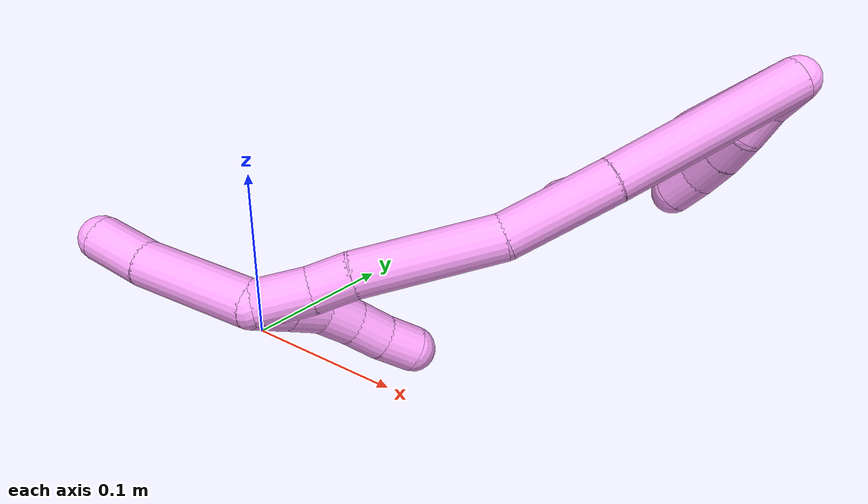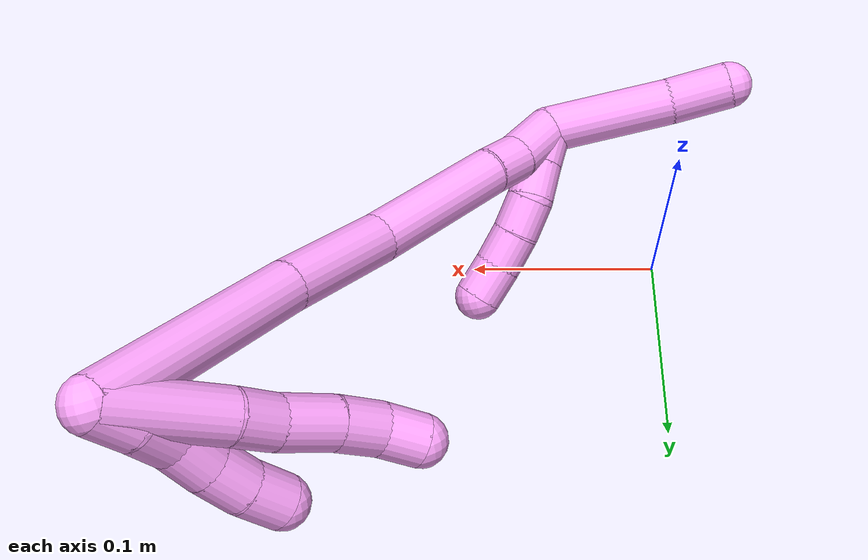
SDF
<sdf version="1.7">
 <world name="default">
  <model name="4">
   <static>0</static>
   <link name="4">
    <collision name="collision-cylinder-e_1_2_8">
     <pose>-0.012062 -0.022034 -0.012981 2.1032 -0.44071 -0.747081</pose>
     <geometry><cylinder><radius>0.0125</radius><length>0.05655</length></cylinder></geometry>
     <surface>
      <friction><ode><mu>1.16</mu><mu2>1.16</mu2><slip1>0</slip1><slip2>0</slip2></ode></friction>
      <contact><ode><kp>1e+06</kp><kd>1</kd><max_vel>0</max_vel><min_depth>0.001</min_depth></ode></contact>
     </surface>
    </collision>
    <visual name="visual-cylinder-e_1_2_8">
     <pose>-0.012062 -0.022034 -0.012981 2.1032 -0.44071 -0.747081</pose>
     <geometry><cylinder><radius>0.0125</radius><length>0.05655</length></cylinder></geometry>
     <material><ambient>1 0.65098 0.996078 1</ambient></material>
    </visual>
    <collision name="collision-cylinder-e_2_8_9">
     <pose>-0.027235 -0.052726 -0.031283 2.1218 -0.297105 -0.522971</pose>
     <geometry><cylinder><radius>0.0125</radius><length>0.021257</length></cylinder></geometry>
     <surface>
      <friction><ode><mu>1.16</mu><mu2>1.16</mu2><slip1>0</slip1><slip2>0</slip2></ode></friction>
      <contact><ode><kp>1e+06</kp><kd>1</kd><max_vel>0</max_vel><min_depth>0.001</min_depth></ode></contact>
     </surface>
    </collision>
    <visual name="visual-cylinder-e_2_8_9">
     <pose>-0.027235 -0.052726 -0.031283 2.1218 -0.297105 -0.522971</pose>
     <geometry><cylinder><radius>0.0125</radius><length>0.021257</length></cylinder></geometry>
     <material><ambient>1 0.65098 0.996078 1</ambient></material>
    </visual>
    <collision name="collision-cylinder-e_3_9_10">
     <pose>-0.036388 -0.072906 -0.042254 2.02676 -0.440036 -0.688926</pose>
     <geometry><cylinder><radius>0.0125</radius><length>0.028367</length></cylinder></geometry>
     <surface>
      <friction><ode><mu>1.16</mu><mu2>1.16</mu2><slip1>0</slip1><slip2>0</slip2></ode></friction>
      <contact><ode><kp>1e+06</kp><kd>1</kd><max_vel>0</max_vel><min_depth>0.001</min_depth></ode></contact>
     </surface>
    </collision>
    <visual name="visual-cylinder-e_3_9_10">
     <pose>-0.036388 -0.072906 -0.042254 2.02676 -0.440036 -0.688926</pose>
     <geometry><cylinder><radius>0.0125</radius><length>0.028367</length></cylinder></geometry>
     <material><ambient>1 0.65098 0.996078 1</ambient></material>
    </visual>
    <collision name="collision-cylinder-e_4_10_11">
     <pose>-0.047216 -0.093369 -0.053595 2.13755 -0.424178 -0.747645</pose>
     <geometry><cylinder><radius>0.0125</radius><length>0.023259</length></cylinder></geometry>
     <surface>
      <friction><ode><mu>1.16</mu><mu2>1.16</mu2><slip1>0</slip1><slip2>0</slip2></ode></friction>
      <contact><ode><kp>1e+06</kp><kd>1</kd><max_vel>0</max_vel><min_depth>0.001</min_depth></ode></contact>
     </surface>
    </collision>
    <visual name="visual-cylinder-e_4_10_11">
     <pose>-0.047216 -0.093369 -0.053595 2.13755 -0.424178 -0.747645</pose>
     <geometry><cylinder><radius>0.0125</radius><length>0.023259</length></cylinder></geometry>
     <material><ambient>1 0.65098 0.996078 1</ambient></material>
    </visual>
    <collision name="collision-cylinder-e_5_11_6">
     <pose>-0.05797 -0.108227 -0.065214 2.35722 -0.619046 -1.31636</pose>
     <geometry><cylinder><radius>0.0125</radius><length>0.020567</length></cylinder></geometry>
     <surface>
      <friction><ode><mu>1.16</mu><mu2>1.16</mu2><slip1>0</slip1><slip2>0</slip2></ode></friction>
      <contact><ode><kp>1e+06</kp><kd>1</kd><max_vel>0</max_vel><min_depth>0.001</min_depth></ode></contact>
     </surface>
    </collision>
    <visual name="visual-cylinder-e_5_11_6">
     <pose>-0.05797 -0.108227 -0.065214 2.35722 -0.619046 -1.31636</pose>
     <geometry><cylinder><radius>0.0125</radius><length>0.020567</length></cylinder></geometry>
     <material><ambient>1 0.65098 0.996078 1</ambient></material>
    </visual>
    <collision name="collision-cylinder-e_1_2_12">
     <pose>-0.002375 -0.006904 -0.006833 2.35108 -0.239825 -0.562298</pose>
     <geometry><cylinder><radius>0.0125</radius><length>0.02</length></cylinder></geometry>
     <surface>
      <friction><ode><mu>1.16</mu><mu2>1.16</mu2><slip1>0</slip1><slip2>0</slip2></ode></friction>
      <contact><ode><kp>1e+06</kp><kd>1</kd><max_vel>0</max_vel><min_depth>0.001</min_depth></ode></contact>
     </surface>
    </collision>
    <visual name="visual-cylinder-e_1_2_12">
     <pose>-0.002375 -0.006904 -0.006833 2.35108 -0.239825 -0.562298</pose>
     <geometry><cylinder><radius>0.0125</radius><length>0.02</length></cylinder></geometry>
     <material><ambient>1 0.65098 0.996078 1</ambient></material>
    </visual>
    <collision name="collision-cylinder-e_2_12_13">
     <pose>-0.005262 -0.021119 -0.02047 2.32017 -0.051205 -0.117474</pose>
     <geometry><cylinder><radius>0.0125</radius><length>0.02</length></cylinder></geometry>
     <surface>
      <friction><ode><mu>1.16</mu><mu2>1.16</mu2><slip1>0</slip1><slip2>0</slip2></ode></friction>
      <contact><ode><kp>1e+06</kp><kd>1</kd><max_vel>0</max_vel><min_depth>0.001</min_depth></ode></contact>
     </surface>
    </collision>
    <visual name="visual-cylinder-e_2_12_13">
     <pose>-0.005262 -0.021119 -0.02047 2.32017 -0.051205 -0.117474</pose>
     <geometry><cylinder><radius>0.0125</radius><length>0.02</length></cylinder></geometry>
     <material><ambient>1 0.65098 0.996078 1</ambient></material>
    </visual>
    <collision name="collision-cylinder-e_3_13_14">
     <pose>-0.00734 -0.033965 -0.035453 2.5468 -0.157263 -0.50328</pose>
     <geometry><cylinder><radius>0.0125</radius><length>0.02</length></cylinder></geometry>
     <surface>
      <friction><ode><mu>1.16</mu><mu2>1.16</mu2><slip1>0</slip1><slip2>0</slip2></ode></friction>
      <contact><ode><kp>1e+06</kp><kd>1</kd><max_vel>0</max_vel><min_depth>0.001</min_depth></ode></contact>
     </surface>
    </collision>
    <visual name="visual-cylinder-e_3_13_14">
     <pose>-0.00734 -0.033965 -0.035453 2.5468 -0.157263 -0.50328</pose>
     <geometry><cylinder><radius>0.0125</radius><length>0.02</length></cylinder></geometry>
     <material><ambient>1 0.65098 0.996078 1</ambient></material>
    </visual>
    <collision name="collision-cylinder-e_4_14_15">
     <pose>-0.011431 -0.045225 -0.051434 2.50838 -0.255196 -0.746462</pose>
     <geometry><cylinder><radius>0.0125</radius><length>0.02</length></cylinder></geometry>
     <surface>
      <friction><ode><mu>1.16</mu><mu2>1.16</mu2><slip1>0</slip1><slip2>0</slip2></ode></friction>
      <contact><ode><kp>1e+06</kp><kd>1</kd><max_vel>0</max_vel><min_depth>0.001</min_depth></ode></contact>
     </surface>
    </collision>
    <visual name="visual-cylinder-e_4_14_15">
     <pose>-0.011431 -0.045225 -0.051434 2.50838 -0.255196 -0.746462</pose>
     <geometry><cylinder><radius>0.0125</radius><length>0.02</length></cylinder></geometry>
     <material><ambient>1 0.65098 0.996078 1</ambient></material>
    </visual>
    <collision name="collision-cylinder-e_5_15_5">
     <pose>-0.017026 -0.057525 -0.066115 2.37902 -0.312084 -0.747905</pose>
     <geometry><cylinder><radius>0.0125</radius><length>0.02</length></cylinder></geometry>
     <surface>
      <friction><ode><mu>1.16</mu><mu2>1.16</mu2><slip1>0</slip1><slip2>0</slip2></ode></friction>
      <contact><ode><kp>1e+06</kp><kd>1</kd><max_vel>0</max_vel><min_depth>0.001</min_depth></ode></contact>
     </surface>
    </collision>
    <visual name="visual-cylinder-e_5_15_5">
     <pose>-0.017026 -0.057525 -0.066115 2.37902 -0.312084 -0.747905</pose>
     <geometry><cylinder><radius>0.0125</radius><length>0.02</length></cylinder></geometry>
     <material><ambient>1 0.65098 0.996078 1</ambient></material>
    </visual>
    <collision name="collision-cylinder-e_1_2_16">
     <pose>-0.012074 -0.052937 0.004953 1.47751 -0.223296 -0.203524</pose>
     <geometry><cylinder><radius>0.0125</radius><length>0.109043</length></cylinder></geometry>
     <surface>
      <friction><ode><mu>1.16</mu><mu2>1.16</mu2><slip1>0</slip1><slip2>0</slip2></ode></friction>
      <contact><ode><kp>1e+06</kp><kd>1</kd><max_vel>0</max_vel><min_depth>0.001</min_depth></ode></contact>
     </surface>
    </collision>
    <visual name="visual-cylinder-e_1_2_16">
     <pose>-0.012074 -0.052937 0.004953 1.47751 -0.223296 -0.203524</pose>
     <geometry><cylinder><radius>0.0125</radius><length>0.109043</length></cylinder></geometry>
     <material><ambient>1 0.65098 0.996078 1</ambient></material>
    </visual>
    <collision name="collision-cylinder-e_2_16_17">
     <pose>-0.032174 -0.135834 0.011694 1.51116 -0.261337 -0.246357</pose>
     <geometry><cylinder><radius>0.0125</radius><length>0.062136</length></cylinder></geometry>
     <surface>
      <friction><ode><mu>1.16</mu><mu2>1.16</mu2><slip1>0</slip1><slip2>0</slip2></ode></friction>
      <contact><ode><kp>1e+06</kp><kd>1</kd><max_vel>0</max_vel><min_depth>0.001</min_depth></ode></contact>
     </surface>
    </collision>
    <visual name="visual-cylinder-e_2_16_17">
     <pose>-0.032174 -0.135834 0.011694 1.51116 -0.261337 -0.246357</pose>
     <geometry><cylinder><radius>0.0125</radius><length>0.062136</length></cylinder></geometry>
     <material><ambient>1 0.65098 0.996078 1</ambient></material>
    </visual>
    <collision name="collision-cylinder-e_3_17_18">
     <pose>-0.057553 -0.199881 0.019509 1.39582 -0.464645 -0.391786</pose>
     <geometry><cylinder><radius>0.0125</radius><length>0.077443</length></cylinder></geometry>
     <surface>
      <friction><ode><mu>1.16</mu><mu2>1.16</mu2><slip1>0</slip1><slip2>0</slip2></ode></friction>
      <contact><ode><kp>1e+06</kp><kd>1</kd><max_vel>0</max_vel><min_depth>0.001</min_depth></ode></contact>
     </surface>
    </collision>
    <visual name="visual-cylinder-e_3_17_18">
     <pose>-0.057553 -0.199881 0.019509 1.39582 -0.464645 -0.391786</pose>
     <geometry><cylinder><radius>0.0125</radius><length>0.077443</length></cylinder></geometry>
     <material><ambient>1 0.65098 0.996078 1</ambient></material>
    </visual>
    <collision name="collision-cylinder-e_4_18_19">
     <pose>-0.079015 -0.244086 0.026495 1.47612 -0.384393 -0.350363</pose>
     <geometry><cylinder><radius>0.0125</radius><length>0.021925</length></cylinder></geometry>
     <surface>
      <friction><ode><mu>1.16</mu><mu2>1.16</mu2><slip1>0</slip1><slip2>0</slip2></ode></friction>
      <contact><ode><kp>1e+06</kp><kd>1</kd><max_vel>0</max_vel><min_depth>0.001</min_depth></ode></contact>
     </surface>
    </collision>
    <visual name="visual-cylinder-e_4_18_19">
     <pose>-0.079015 -0.244086 0.026495 1.47612 -0.384393 -0.350363</pose>
     <geometry><cylinder><radius>0.0125</radius><length>0.021925</length></cylinder></geometry>
     <material><ambient>1 0.65098 0.996078 1</ambient></material>
    </visual>
    <collision name="collision-cylinder-e_5_19_1">
     <pose>-0.089042 -0.267027 0.031629 1.25622 -0.413402 -0.302252</pose>
     <geometry><cylinder><radius>0.0125</radius><length>0.029452</length></cylinder></geometry>
     <surface>
      <friction><ode><mu>1.16</mu><mu2>1.16</mu2><slip1>0</slip1><slip2>0</slip2></ode></friction>
      <contact><ode><kp>1e+06</kp><kd>1</kd><max_vel>0</max_vel><min_depth>0.001</min_depth></ode></contact>
     </surface>
    </collision>
    <visual name="visual-cylinder-e_5_19_1">
     <pose>-0.089042 -0.267027 0.031629 1.25622 -0.413402 -0.302252</pose>
     <geometry><cylinder><radius>0.0125</radius><length>0.029452</length></cylinder></geometry>
     <material><ambient>1 0.65098 0.996078 1</ambient></material>
    </visual>
    <collision name="collision-cylinder-e_1_1_20">
     <pose>-0.125221 -0.294728 0.034689 1.64543 -1.1128 -1.18088</pose>
     <geometry><cylinder><radius>0.0125</radius><length>0.067481</length></cylinder></geometry>
     <surface>
      <friction><ode><mu>1.16</mu><mu2>1.16</mu2><slip1>0</slip1><slip2>0</slip2></ode></friction>
      <contact><ode><kp>1e+06</kp><kd>1</kd><max_vel>0</max_vel><min_depth>0.001</min_depth></ode></contact>
     </surface>
    </collision>
    <visual name="visual-cylinder-e_1_1_20">
     <pose>-0.125221 -0.294728 0.034689 1.64543 -1.1128 -1.18088</pose>
     <geometry><cylinder><radius>0.0125</radius><length>0.067481</length></cylinder></geometry>
     <material><ambient>1 0.65098 0.996078 1</ambient></material>
    </visual>
    <collision name="collision-cylinder-e_2_20_4">
     <pose>-0.170804 -0.315041 0.033908 1.50997 -1.22918 -1.17245</pose>
     <geometry><cylinder><radius>0.0125</radius><length>0.032519</length></cylinder></geometry>
     <surface>
      <friction><ode><mu>1.16</mu><mu2>1.16</mu2><slip1>0</slip1><slip2>0</slip2></ode></friction>
      <contact><ode><kp>1e+06</kp><kd>1</kd><max_vel>0</max_vel><min_depth>0.001</min_depth></ode></contact>
     </surface>
    </collision>
    <visual name="visual-cylinder-e_2_20_4">
     <pose>-0.170804 -0.315041 0.033908 1.50997 -1.22918 -1.17245</pose>
     <geometry><cylinder><radius>0.0125</radius><length>0.032519</length></cylinder></geometry>
     <material><ambient>1 0.65098 0.996078 1</ambient></material>
    </visual>
    <collision name="collision-cylinder-e_1_1_21">
     <pose>-0.091891 -0.274521 0.027916 -2.5472 0.311719 -0.948084</pose>
     <geometry><cylinder><radius>0.0125</radius><length>0.02</length></cylinder></geometry>
     <surface>
      <friction><ode><mu>1.16</mu><mu2>1.16</mu2><slip1>0</slip1><slip2>0</slip2></ode></friction>
      <contact><ode><kp>1e+06</kp><kd>1</kd><max_vel>0</max_vel><min_depth>0.001</min_depth></ode></contact>
     </surface>
    </collision>
    <visual name="visual-cylinder-e_1_1_21">
     <pose>-0.091891 -0.274521 0.027916 -2.5472 0.311719 -0.948084</pose>
     <geometry><cylinder><radius>0.0125</radius><length>0.02</length></cylinder></geometry>
     <material><ambient>1 0.65098 0.996078 1</ambient></material>
    </visual>
    <collision name="collision-cylinder-e_2_21_22">
     <pose>-0.085966 -0.264192 0.011854 -2.59285 0.28983 -0.95665</pose>
     <geometry><cylinder><radius>0.0125</radius><length>0.02</length></cylinder></geometry>
     <surface>
      <friction><ode><mu>1.16</mu><mu2>1.16</mu2><slip1>0</slip1><slip2>0</slip2></ode></friction>
      <contact><ode><kp>1e+06</kp><kd>1</kd><max_vel>0</max_vel><min_depth>0.001</min_depth></ode></contact>
     </surface>
    </collision>
    <visual name="visual-cylinder-e_2_21_22">
     <pose>-0.085966 -0.264192 0.011854 -2.59285 0.28983 -0.95665</pose>
     <geometry><cylinder><radius>0.0125</radius><length>0.02</length></cylinder></geometry>
     <material><ambient>1 0.65098 0.996078 1</ambient></material>
    </visual>
    <collision name="collision-cylinder-e_3_22_23">
     <pose>-0.077886 -0.255911 -0.004194 -2.74657 0.549368 -1.90662</pose>
     <geometry><cylinder><radius>0.0125</radius><length>0.02</length></cylinder></geometry>
     <surface>
      <friction><ode><mu>1.16</mu><mu2>1.16</mu2><slip1>0</slip1><slip2>0</slip2></ode></friction>
      <contact><ode><kp>1e+06</kp><kd>1</kd><max_vel>0</max_vel><min_depth>0.001</min_depth></ode></contact>
     </surface>
    </collision>
    <visual name="visual-cylinder-e_3_22_23">
     <pose>-0.077886 -0.255911 -0.004194 -2.74657 0.549368 -1.90662</pose>
     <geometry><cylinder><radius>0.0125</radius><length>0.02</length></cylinder></geometry>
     <material><ambient>1 0.65098 0.996078 1</ambient></material>
    </visual>
    <collision name="collision-cylinder-e_4_23_24">
     <pose>-0.066468 -0.249717 -0.019354 -2.76142 0.668333 -2.12947</pose>
     <geometry><cylinder><radius>0.0125</radius><length>0.02</length></cylinder></geometry>
     <surface>
      <friction><ode><mu>1.16</mu><mu2>1.16</mu2><slip1>0</slip1><slip2>0</slip2></ode></friction>
      <contact><ode><kp>1e+06</kp><kd>1</kd><max_vel>0</max_vel><min_depth>0.001</min_depth></ode></contact>
     </surface>
    </collision>
    <visual name="visual-cylinder-e_4_23_24">
     <pose>-0.066468 -0.249717 -0.019354 -2.76142 0.668333 -2.12947</pose>
     <geometry><cylinder><radius>0.0125</radius><length>0.02</length></cylinder></geometry>
     <material><ambient>1 0.65098 0.996078 1</ambient></material>
    </visual>
    <collision name="collision-cylinder-e_5_24_3">
     <pose>-0.054036 -0.242895 -0.033412 -2.61792 0.673302 -1.8346</pose>
     <geometry><cylinder><radius>0.0125</radius><length>0.02</length></cylinder></geometry>
     <surface>
      <friction><ode><mu>1.16</mu><mu2>1.16</mu2><slip1>0</slip1><slip2>0</slip2></ode></friction>
      <contact><ode><kp>1e+06</kp><kd>1</kd><max_vel>0</max_vel><min_depth>0.001</min_depth></ode></contact>
     </surface>
    </collision>
    <visual name="visual-cylinder-e_5_24_3">
     <pose>-0.054036 -0.242895 -0.033412 -2.61792 0.673302 -1.8346</pose>
     <geometry><cylinder><radius>0.0125</radius><length>0.02</length></cylinder></geometry>
     <material><ambient>1 0.65098 0.996078 1</ambient></material>
    </visual>
    <collision name="collision-sphere-3">
     <pose>-0.0478 -0.238986 -0.040182 0 -0 0</pose>
     <geometry><sphere><radius>0.0125</radius></sphere></geometry>
     <surface>
      <friction><ode><mu>1.16</mu><mu2>1.16</mu2><slip1>0</slip1><slip2>0</slip2></ode></friction>
      <contact><ode><kp>1e+06</kp><kd>1</kd><max_vel>0</max_vel><min_depth>0.001</min_depth></ode></contact>
     </surface>
    </collision>
    <visual name="visual-sphere-3">
     <pose>-0.0478 -0.238986 -0.040182 0 -0 0</pose>
     <geometry><sphere><radius>0.0125</radius></sphere></geometry>
     <material><ambient>1 0.65098 0.996078 1</ambient></material>
    </visual>
    <collision name="collision-sphere-24">
     <pose>-0.060271 -0.246804 -0.026642 0 -0 0</pose>
     <geometry><sphere><radius>0.0125</radius></sphere></geometry>
     <surface>
      <friction><ode><mu>1.16</mu><mu2>1.16</mu2><slip1>0</slip1><slip2>0</slip2></ode></friction>
      <contact><ode><kp>1e+06</kp><kd>1</kd><max_vel>0</max_vel><min_depth>0.001</min_depth></ode></contact>
     </surface>
    </collision>
    <visual name="visual-sphere-24">
     <pose>-0.060271 -0.246804 -0.026642 0 -0 0</pose>
     <geometry><sphere><radius>0.0125</radius></sphere></geometry>
     <material><ambient>1 0.65098 0.996078 1</ambient></material>
    </visual>
    <collision name="collision-sphere-23">
     <pose>-0.072665 -0.252629 -0.012065 0 -0 0</pose>
     <geometry><sphere><radius>0.0125</radius></sphere></geometry>
     <surface>
      <friction><ode><mu>1.16</mu><mu2>1.16</mu2><slip1>0</slip1><slip2>0</slip2></ode></friction>
      <contact><ode><kp>1e+06</kp><kd>1</kd><max_vel>0</max_vel><min_depth>0.001</min_depth></ode></contact>
     </surface>
    </collision>
    <visual name="visual-sphere-23">
     <pose>-0.072665 -0.252629 -0.012065 0 -0 0</pose>
     <geometry><sphere><radius>0.0125</radius></sphere></geometry>
     <material><ambient>1 0.65098 0.996078 1</ambient></material>
    </visual>
    <collision name="collision-sphere-22">
     <pose>-0.083108 -0.259193 0.003678 0 -0 0</pose>
     <geometry><sphere><radius>0.0125</radius></sphere></geometry>
     <surface>
      <friction><ode><mu>1.16</mu><mu2>1.16</mu2><slip1>0</slip1><slip2>0</slip2></ode></friction>
      <contact><ode><kp>1e+06</kp><kd>1</kd><max_vel>0</max_vel><min_depth>0.001</min_depth></ode></contact>
     </surface>
    </collision>
    <visual name="visual-sphere-22">
     <pose>-0.083108 -0.259193 0.003678 0 -0 0</pose>
     <geometry><sphere><radius>0.0125</radius></sphere></geometry>
     <material><ambient>1 0.65098 0.996078 1</ambient></material>
    </visual>
    <collision name="collision-sphere-21">
     <pose>-0.088824 -0.26919 0.02003 0 -0 0</pose>
     <geometry><sphere><radius>0.0125</radius></sphere></geometry>
     <surface>
      <friction><ode><mu>1.16</mu><mu2>1.16</mu2><slip1>0</slip1><slip2>0</slip2></ode></friction>
      <contact><ode><kp>1e+06</kp><kd>1</kd><max_vel>0</max_vel><min_depth>0.001</min_depth></ode></contact>
     </surface>
    </collision>
    <visual name="visual-sphere-21">
     <pose>-0.088824 -0.26919 0.02003 0 -0 0</pose>
     <geometry><sphere><radius>0.0125</radius></sphere></geometry>
     <material><ambient>1 0.65098 0.996078 1</ambient></material>
    </visual>
    <collision name="collision-sphere-4">
     <pose>-0.186124 -0.320478 0.034239 0 -0 0</pose>
     <geometry><sphere><radius>0.0125</radius></sphere></geometry>
     <surface>
      <friction><ode><mu>1.16</mu><mu2>1.16</mu2><slip1>0</slip1><slip2>0</slip2></ode></friction>
      <contact><ode><kp>1e+06</kp><kd>1</kd><max_vel>0</max_vel><min_depth>0.001</min_depth></ode></contact>
     </surface>
    </collision>
    <visual name="visual-sphere-4">
     <pose>-0.186124 -0.320478 0.034239 0 -0 0</pose>
     <geometry><sphere><radius>0.0125</radius></sphere></geometry>
     <material><ambient>1 0.65098 0.996078 1</ambient></material>
    </visual>
    <collision name="collision-sphere-20">
     <pose>-0.155484 -0.309604 0.033576 0 -0 0</pose>
     <geometry><sphere><radius>0.0125</radius></sphere></geometry>
     <surface>
      <friction><ode><mu>1.16</mu><mu2>1.16</mu2><slip1>0</slip1><slip2>0</slip2></ode></friction>
      <contact><ode><kp>1e+06</kp><kd>1</kd><max_vel>0</max_vel><min_depth>0.001</min_depth></ode></contact>
     </surface>
    </collision>
    <visual name="visual-sphere-20">
     <pose>-0.155484 -0.309604 0.033576 0 -0 0</pose>
     <geometry><sphere><radius>0.0125</radius></sphere></geometry>
     <material><ambient>1 0.65098 0.996078 1</ambient></material>
    </visual>
    <collision name="collision-sphere-6">
     <pose>-0.063937 -0.114143 -0.071142 0 -0 0</pose>
     <geometry><sphere><radius>0.0125</radius></sphere></geometry>
     <surface>
      <friction><ode><mu>1.16</mu><mu2>1.16</mu2><slip1>0</slip1><slip2>0</slip2></ode></friction>
      <contact><ode><kp>1e+06</kp><kd>1</kd><max_vel>0</max_vel><min_depth>0.001</min_depth></ode></contact>
     </surface>
    </collision>
    <visual name="visual-sphere-6">
     <pose>-0.063937 -0.114143 -0.071142 0 -0 0</pose>
     <geometry><sphere><radius>0.0125</radius></sphere></geometry>
     <material><ambient>1 0.65098 0.996078 1</ambient></material>
    </visual>
    <collision name="collision-sphere-11">
     <pose>-0.052003 -0.102311 -0.059286 0 -0 0</pose>
     <geometry><sphere><radius>0.0125</radius></sphere></geometry>
     <surface>
      <friction><ode><mu>1.16</mu><mu2>1.16</mu2><slip1>0</slip1><slip2>0</slip2></ode></friction>
      <contact><ode><kp>1e+06</kp><kd>1</kd><max_vel>0</max_vel><min_depth>0.001</min_depth></ode></contact>
     </surface>
    </collision>
    <visual name="visual-sphere-11">
     <pose>-0.052003 -0.102311 -0.059286 0 -0 0</pose>
     <geometry><sphere><radius>0.0125</radius></sphere></geometry>
     <material><ambient>1 0.65098 0.996078 1</ambient></material>
    </visual>
    <collision name="collision-sphere-10">
     <pose>-0.04243 -0.084427 -0.047905 0 -0 0</pose>
     <geometry><sphere><radius>0.0125</radius></sphere></geometry>
     <surface>
      <friction><ode><mu>1.16</mu><mu2>1.16</mu2><slip1>0</slip1><slip2>0</slip2></ode></friction>
      <contact><ode><kp>1e+06</kp><kd>1</kd><max_vel>0</max_vel><min_depth>0.001</min_depth></ode></contact>
     </surface>
    </collision>
    <visual name="visual-sphere-10">
     <pose>-0.04243 -0.084427 -0.047905 0 -0 0</pose>
     <geometry><sphere><radius>0.0125</radius></sphere></geometry>
     <material><ambient>1 0.65098 0.996078 1</ambient></material>
    </visual>
    <collision name="collision-sphere-9">
     <pose>-0.030346 -0.061385 -0.036604 0 -0 0</pose>
     <geometry><sphere><radius>0.0125</radius></sphere></geometry>
     <surface>
      <friction><ode><mu>1.16</mu><mu2>1.16</mu2><slip1>0</slip1><slip2>0</slip2></ode></friction>
      <contact><ode><kp>1e+06</kp><kd>1</kd><max_vel>0</max_vel><min_depth>0.001</min_depth></ode></contact>
     </surface>
    </collision>
    <visual name="visual-sphere-9">
     <pose>-0.030346 -0.061385 -0.036604 0 -0 0</pose>
     <geometry><sphere><radius>0.0125</radius></sphere></geometry>
     <material><ambient>1 0.65098 0.996078 1</ambient></material>
    </visual>
    <collision name="collision-sphere-2">
     <geometry><sphere><radius>0.0125</radius></sphere></geometry>
     <surface>
      <friction><ode><mu>1.16</mu><mu2>1.16</mu2><slip1>0</slip1><slip2>0</slip2></ode></friction>
      <contact><ode><kp>1e+06</kp><kd>1</kd><max_vel>0</max_vel><min_depth>0.001</min_depth></ode></contact>
     </surface>
    </collision>
    <visual name="visual-sphere-2">
     <geometry><sphere><radius>0.0125</radius></sphere></geometry>
     <material><ambient>1 0.65098 0.996078 1</ambient></material>
    </visual>
    <collision name="collision-sphere-19">
     <pose>-0.083126 -0.254203 0.027456 0 -0 0</pose>
     <geometry><sphere><radius>0.0125</radius></sphere></geometry>
     <surface>
      <friction><ode><mu>1.16</mu><mu2>1.16</mu2><slip1>0</slip1><slip2>0</slip2></ode></friction>
      <contact><ode><kp>1e+06</kp><kd>1</kd><max_vel>0</max_vel><min_depth>0.001</min_depth></ode></contact>
     </surface>
    </collision>
    <visual name="visual-sphere-19">
     <pose>-0.083126 -0.254203 0.027456 0 -0 0</pose>
     <geometry><sphere><radius>0.0125</radius></sphere></geometry>
     <material><ambient>1 0.65098 0.996078 1</ambient></material>
    </visual>
    <collision name="collision-sphere-8">
     <pose>-0.024123 -0.044067 -0.025962 0 -0 0</pose>
     <geometry><sphere><radius>0.0125</radius></sphere></geometry>
     <surface>
      <friction><ode><mu>1.16</mu><mu2>1.16</mu2><slip1>0</slip1><slip2>0</slip2></ode></friction>
      <contact><ode><kp>1e+06</kp><kd>1</kd><max_vel>0</max_vel><min_depth>0.001</min_depth></ode></contact>
     </surface>
    </collision>
    <visual name="visual-sphere-8">
     <pose>-0.024123 -0.044067 -0.025962 0 -0 0</pose>
     <geometry><sphere><radius>0.0125</radius></sphere></geometry>
     <material><ambient>1 0.65098 0.996078 1</ambient></material>
    </visual>
    <collision name="collision-sphere-12">
     <pose>-0.004751 -0.013807 -0.013667 0 -0 0</pose>
     <geometry><sphere><radius>0.0125</radius></sphere></geometry>
     <surface>
      <friction><ode><mu>1.16</mu><mu2>1.16</mu2><slip1>0</slip1><slip2>0</slip2></ode></friction>
      <contact><ode><kp>1e+06</kp><kd>1</kd><max_vel>0</max_vel><min_depth>0.001</min_depth></ode></contact>
     </surface>
    </collision>
    <visual name="visual-sphere-12">
     <pose>-0.004751 -0.013807 -0.013667 0 -0 0</pose>
     <geometry><sphere><radius>0.0125</radius></sphere></geometry>
     <material><ambient>1 0.65098 0.996078 1</ambient></material>
    </visual>
    <collision name="collision-sphere-13">
     <pose>-0.005774 -0.028431 -0.027273 0 -0 0</pose>
     <geometry><sphere><radius>0.0125</radius></sphere></geometry>
     <surface>
      <friction><ode><mu>1.16</mu><mu2>1.16</mu2><slip1>0</slip1><slip2>0</slip2></ode></friction>
      <contact><ode><kp>1e+06</kp><kd>1</kd><max_vel>0</max_vel><min_depth>0.001</min_depth></ode></contact>
     </surface>
    </collision>
    <visual name="visual-sphere-13">
     <pose>-0.005774 -0.028431 -0.027273 0 -0 0</pose>
     <geometry><sphere><radius>0.0125</radius></sphere></geometry>
     <material><ambient>1 0.65098 0.996078 1</ambient></material>
    </visual>
    <collision name="collision-sphere-14">
     <pose>-0.008907 -0.039499 -0.043634 0 -0 0</pose>
     <geometry><sphere><radius>0.0125</radius></sphere></geometry>
     <surface>
      <friction><ode><mu>1.16</mu><mu2>1.16</mu2><slip1>0</slip1><slip2>0</slip2></ode></friction>
      <contact><ode><kp>1e+06</kp><kd>1</kd><max_vel>0</max_vel><min_depth>0.001</min_depth></ode></contact>
     </surface>
    </collision>
    <visual name="visual-sphere-14">
     <pose>-0.008907 -0.039499 -0.043634 0 -0 0</pose>
     <geometry><sphere><radius>0.0125</radius></sphere></geometry>
     <material><ambient>1 0.65098 0.996078 1</ambient></material>
    </visual>
    <collision name="collision-sphere-15">
     <pose>-0.013955 -0.050951 -0.059234 0 -0 0</pose>
     <geometry><sphere><radius>0.0125</radius></sphere></geometry>
     <surface>
      <friction><ode><mu>1.16</mu><mu2>1.16</mu2><slip1>0</slip1><slip2>0</slip2></ode></friction>
      <contact><ode><kp>1e+06</kp><kd>1</kd><max_vel>0</max_vel><min_depth>0.001</min_depth></ode></contact>
     </surface>
    </collision>
    <visual name="visual-sphere-15">
     <pose>-0.013955 -0.050951 -0.059234 0 -0 0</pose>
     <geometry><sphere><radius>0.0125</radius></sphere></geometry>
     <material><ambient>1 0.65098 0.996078 1</ambient></material>
    </visual>
    <collision name="collision-sphere-5">
     <pose>-0.020096 -0.064099 -0.072997 0 -0 0</pose>
     <geometry><sphere><radius>0.0125</radius></sphere></geometry>
     <surface>
      <friction><ode><mu>1.16</mu><mu2>1.16</mu2><slip1>0</slip1><slip2>0</slip2></ode></friction>
      <contact><ode><kp>1e+06</kp><kd>1</kd><max_vel>0</max_vel><min_depth>0.001</min_depth></ode></contact>
     </surface>
    </collision>
    <visual name="visual-sphere-5">
     <pose>-0.020096 -0.064099 -0.072997 0 -0 0</pose>
     <geometry><sphere><radius>0.0125</radius></sphere></geometry>
     <material><ambient>1 0.65098 0.996078 1</ambient></material>
    </visual>
    <collision name="collision-sphere-16">
     <pose>-0.024147 -0.105874 0.009905 0 -0 0</pose>
     <geometry><sphere><radius>0.0125</radius></sphere></geometry>
     <surface>
      <friction><ode><mu>1.16</mu><mu2>1.16</mu2><slip1>0</slip1><slip2>0</slip2></ode></friction>
      <contact><ode><kp>1e+06</kp><kd>1</kd><max_vel>0</max_vel><min_depth>0.001</min_depth></ode></contact>
     </surface>
    </collision>
    <visual name="visual-sphere-16">
     <pose>-0.024147 -0.105874 0.009905 0 -0 0</pose>
     <geometry><sphere><radius>0.0125</radius></sphere></geometry>
     <material><ambient>1 0.65098 0.996078 1</ambient></material>
    </visual>
    <collision name="collision-sphere-17">
     <pose>-0.040201 -0.165794 0.013483 0 -0 0</pose>
     <geometry><sphere><radius>0.0125</radius></sphere></geometry>
     <surface>
      <friction><ode><mu>1.16</mu><mu2>1.16</mu2><slip1>0</slip1><slip2>0</slip2></ode></friction>
      <contact><ode><kp>1e+06</kp><kd>1</kd><max_vel>0</max_vel><min_depth>0.001</min_depth></ode></contact>
     </surface>
    </collision>
    <visual name="visual-sphere-17">
     <pose>-0.040201 -0.165794 0.013483 0 -0 0</pose>
     <geometry><sphere><radius>0.0125</radius></sphere></geometry>
     <material><ambient>1 0.65098 0.996078 1</ambient></material>
    </visual>
    <collision name="collision-sphere-18">
     <pose>-0.074904 -0.233969 0.025535 0 -0 0</pose>
     <geometry><sphere><radius>0.0125</radius></sphere></geometry>
     <surface>
      <friction><ode><mu>1.16</mu><mu2>1.16</mu2><slip1>0</slip1><slip2>0</slip2></ode></friction>
      <contact><ode><kp>1e+06</kp><kd>1</kd><max_vel>0</max_vel><min_depth>0.001</min_depth></ode></contact>
     </surface>
    </collision>
    <visual name="visual-sphere-18">
     <pose>-0.074904 -0.233969 0.025535 0 -0 0</pose>
     <geometry><sphere><radius>0.0125</radius></sphere></geometry>
     <material><ambient>1 0.65098 0.996078 1</ambient></material>
    </visual>
    <collision name="collision-sphere-1">
     <pose>-0.094958 -0.279851 0.035801 0 -0 0</pose>
     <geometry><sphere><radius>0.0125</radius></sphere></geometry>
     <surface>
      <friction><ode><mu>1.16</mu><mu2>1.16</mu2><slip1>0</slip1><slip2>0</slip2></ode></friction>
      <contact><ode><kp>1e+06</kp><kd>1</kd><max_vel>0</max_vel><min_depth>0.001</min_depth></ode></contact>
     </surface>
    </collision>
    <visual name="visual-sphere-1">
     <pose>-0.094958 -0.279851 0.035801 0 -0 0</pose>
     <geometry><sphere><radius>0.0125</radius></sphere></geometry>
     <material><ambient>1 0.65098 0.996078 1</ambient></material>
    </visual>
    <inertial>
     <pose>-0.052146 -0.147885 -0.001869 0 -0 0</pose>
     <mass>0.75</mass>
     <inertia>
      <ixx>9.7e-05</ixx>
      <ixy>0</ixy>
      <ixz>0</ixz>
      <iyy>-6.2e-05</iyy>
      <iyz>0</iyz>
      <izz>0.000282</izz>
     </inertia>
    </inertial>
   </link>
   <pose>0.243111 0.160279 0.158174 0.725433 0.468652 -0.120695</pose>
  </model>
 </world>
</sdf>
